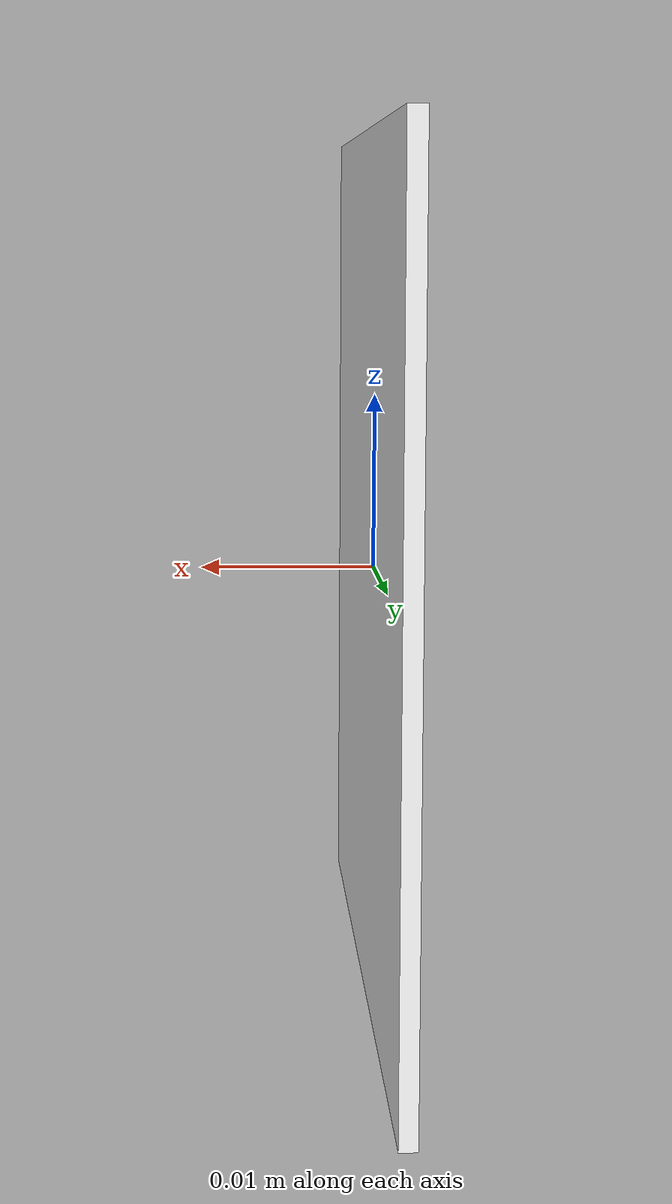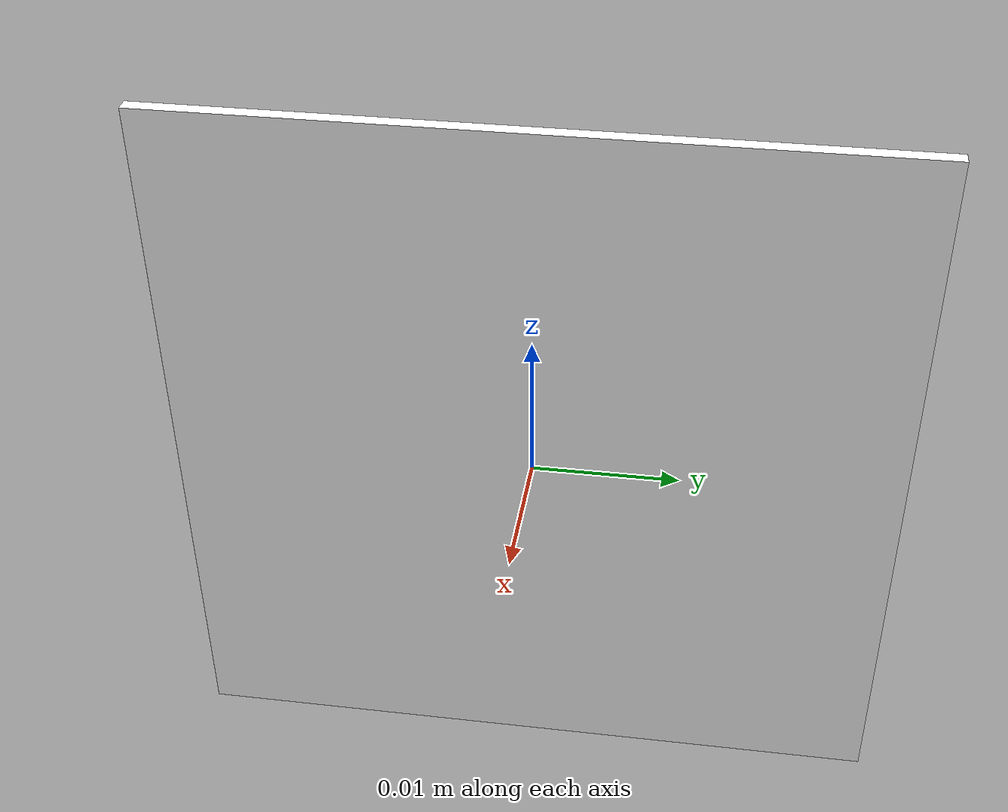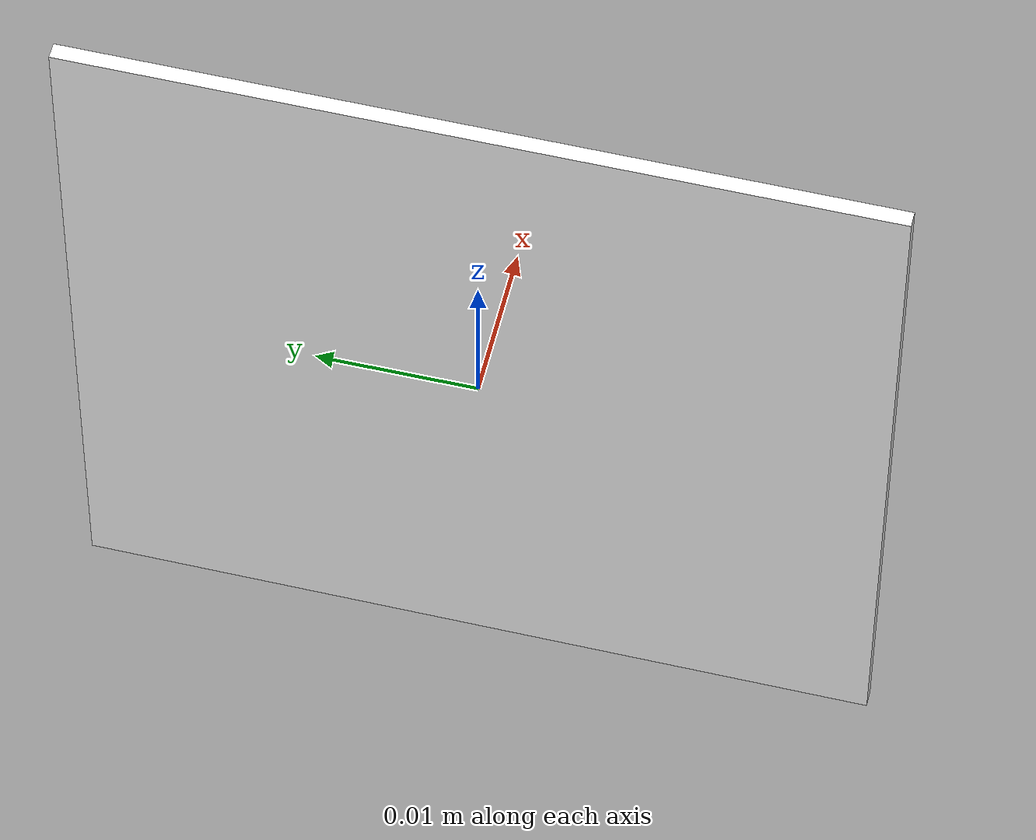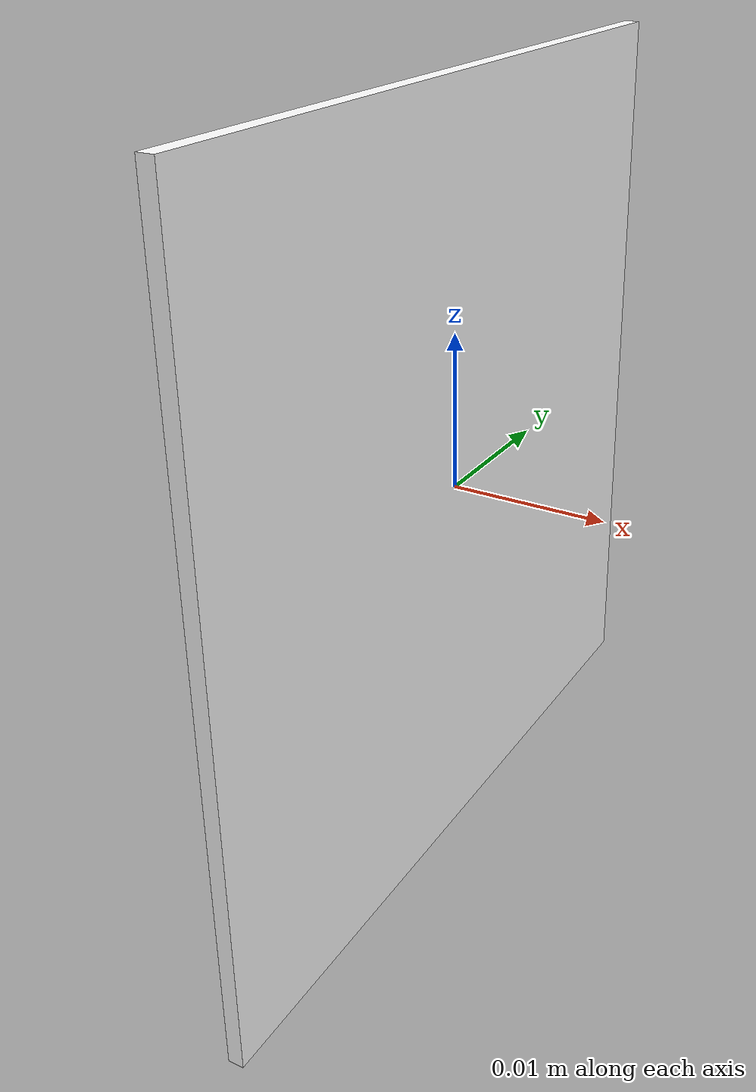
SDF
<sdf version="1.6">
  <model name="aruco_marker">
    <static>true</static>
    <pose>0 0 0 0 1.5708 0</pose>

    <link name="marker_link">

      <visual name="marker_visual">
        <geometry>
          <box>
            <size>0.05 0.05 0.001</size>
          </box>
        </geometry>

        <material>
          <ambient>1 1 1 1</ambient>
          <diffuse>1 1 1 1</diffuse>
          <script>
            <uri>model://aruco_marker/materials/scripts</uri>
            <uri>model://aruco_marker/materials/textures</uri>
            <name>ArucoMarker</name>
          </script>
        </material>

      </visual>

      <collision name="collision">
        <geometry>
          <box>
            <size>0.05 0.05 0.001</size>
          </box>
        </geometry>
      </collision>

    </link>

  </model>
</sdf>
